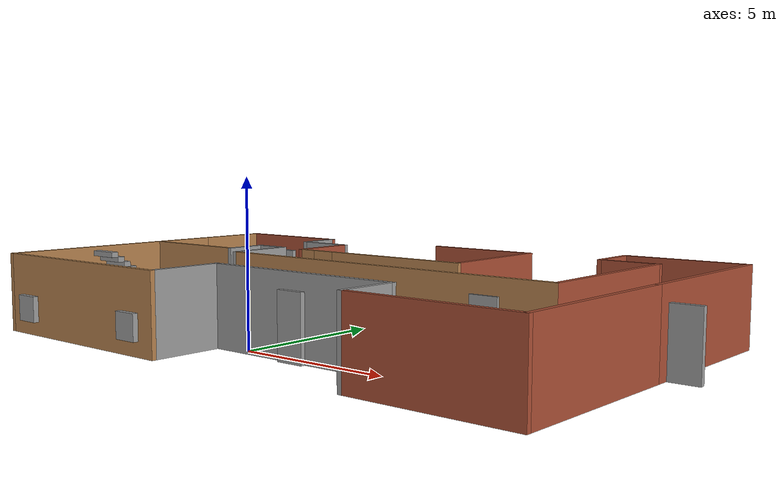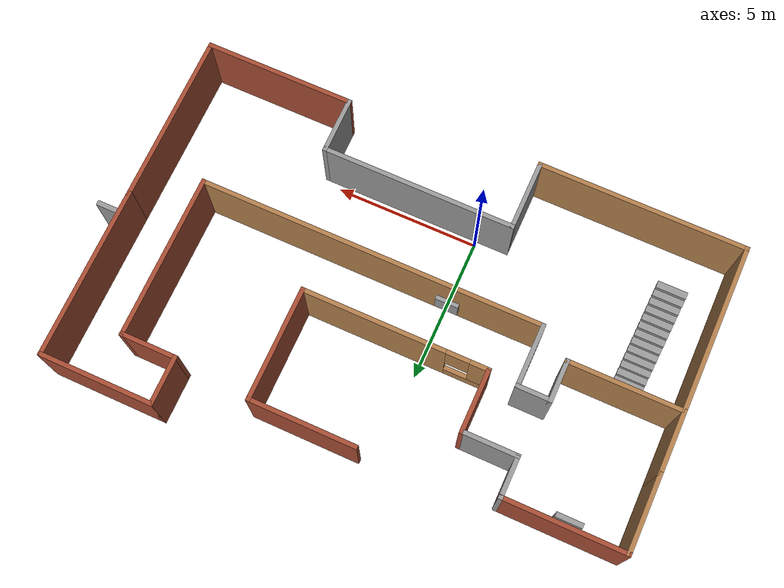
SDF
<?xml version='1.0'?>
<sdf version='1.6'>
  <model name='Untitled'>
    <pose frame=''>1.23619 3.51457 0 0 -0 0</pose>
    <link name='Door_0'>
      <collision name='Door_0_Collision'>
        <geometry>
          <box>
            <size>0.9 0.17 2</size>
          </box>
        </geometry>
        <pose frame=''>0 0 1 0 -0 0</pose>
      </collision>
      <visual name='Door_0_Visual'>
        <pose frame=''>0 0 1 0 -0 0</pose>
        <geometry>
          <box>
            <size>0.9 0.17 2</size>
          </box>
        </geometry>
        <material>
          <script>
            <uri>file://media/materials/scripts/gazebo.material</uri>
            <name>Gazebo/Grey</name>
          </script>
        </material>
      </visual>
      <pose frame=''>-7.462 4.06 0 0 -0 0</pose>
    </link>
    <link name='Door_1'>
      <collision name='Door_1_Collision'>
        <geometry>
          <box>
            <size>0.9 0.17 2</size>
          </box>
        </geometry>
        <pose frame=''>0 0 1 0 -0 0</pose>
      </collision>
      <visual name='Door_1_Visual'>
        <pose frame=''>0 0 1 0 -0 0</pose>
        <geometry>
          <box>
            <size>0.9 0.17 2</size>
          </box>
        </geometry>
        <material>
          <script>
            <uri>file://media/materials/scripts/gazebo.material</uri>
            <name>Gazebo/Grey</name>
          </script>
        </material>
      </visual>
      <pose frame=''>0.883239 -3.89073 0 0 -0 0</pose>
    </link>
    <link name='Door_2'>
      <collision name='Door_2_Collision'>
        <geometry>
          <box>
            <size>0.9 0.17 2</size>
          </box>
        </geometry>
        <pose frame=''>0 0 1 0 -0 0</pose>
      </collision>
      <visual name='Door_2_Visual'>
        <pose frame=''>0 0 1 0 -0 0</pose>
        <geometry>
          <box>
            <size>0.9 0.17 2</size>
          </box>
        </geometry>
        <material>
          <script>
            <uri>file://media/materials/scripts/gazebo.material</uri>
            <name>Gazebo/Grey</name>
          </script>
        </material>
      </visual>
      <pose frame=''>9.92731 0.817506 0 0 -0 0</pose>
    </link>
    <link name='Door_3'>
      <collision name='Door_3_Collision'>
        <geometry>
          <box>
            <size>0.9 0.17 2</size>
          </box>
        </geometry>
        <pose frame=''>0 0 1 0 -0 0</pose>
      </collision>
      <visual name='Door_3_Visual'>
        <pose frame=''>0 0 1 0 -0 0</pose>
        <geometry>
          <box>
            <size>0.9 0.17 2</size>
          </box>
        </geometry>
        <material>
          <script>
            <uri>file://media/materials/scripts/gazebo.material</uri>
            <name>Gazebo/Grey</name>
          </script>
        </material>
      </visual>
      <pose frame=''>5.29887 -1.17751 0 0 -0 0</pose>
    </link>
    <link name='Stairs_3'>
      <visual name='Stairs_3_Visual_0'>
        <pose frame=''>-7.69237 -0.558825 0.083333 0 -0 0</pose>
        <geometry>
          <box>
            <size>1 0.233333 0.166667</size>
          </box>
        </geometry>
        <material>
          <script>
            <uri>file://media/materials/scripts/gazebo.material</uri>
            <name>Gazebo/Grey</name>
          </script>
          <ambient>1 1 1 1</ambient>
        </material>
        <meta>
          <layer>0</layer>
        </meta>
      </visual>
      <collision name='Stairs_3_Collision_0'>
        <geometry>
          <box>
            <size>1 0.233333 0.166667</size>
          </box>
        </geometry>
        <pose frame=''>-7.69237 -0.558825 0.083333 0 -0 0</pose>
      </collision>
      <visual name='Stairs_3_Visual_1'>
        <pose frame=''>-7.69237 -0.792158 0.25 0 -0 0</pose>
        <geometry>
          <box>
            <size>1 0.233333 0.166667</size>
          </box>
        </geometry>
        <material>
          <script>
            <uri>file://media/materials/scripts/gazebo.material</uri>
            <name>Gazebo/Grey</name>
          </script>
          <ambient>1 1 1 1</ambient>
        </material>
        <meta>
          <layer>0</layer>
        </meta>
      </visual>
      <collision name='Stairs_3_Collision_1'>
        <geometry>
          <box>
            <size>1 0.233333 0.166667</size>
          </box>
        </geometry>
        <pose frame=''>-7.69237 -0.792158 0.25 0 -0 0</pose>
      </collision>
      <visual name='Stairs_3_Visual_2'>
        <pose frame=''>-7.69237 -1.02549 0.416667 0 -0 0</pose>
        <geometry>
          <box>
            <size>1 0.233333 0.166667</size>
          </box>
        </geometry>
        <material>
          <script>
            <uri>file://media/materials/scripts/gazebo.material</uri>
            <name>Gazebo/Grey</name>
          </script>
          <ambient>1 1 1 1</ambient>
        </material>
        <meta>
          <layer>0</layer>
        </meta>
      </visual>
      <collision name='Stairs_3_Collision_2'>
        <geometry>
          <box>
            <size>1 0.233333 0.166667</size>
          </box>
        </geometry>
        <pose frame=''>-7.69237 -1.02549 0.416667 0 -0 0</pose>
      </collision>
      <visual name='Stairs_3_Visual_3'>
        <pose frame=''>-7.69237 -1.25883 0.583333 0 -0 0</pose>
        <geometry>
          <box>
            <size>1 0.233333 0.166667</size>
          </box>
        </geometry>
        <material>
          <script>
            <uri>file://media/materials/scripts/gazebo.material</uri>
            <name>Gazebo/Grey</name>
          </script>
          <ambient>1 1 1 1</ambient>
        </material>
        <meta>
          <layer>0</layer>
        </meta>
      </visual>
      <collision name='Stairs_3_Collision_3'>
        <geometry>
          <box>
            <size>1 0.233333 0.166667</size>
          </box>
        </geometry>
        <pose frame=''>-7.69237 -1.25883 0.583333 0 -0 0</pose>
      </collision>
      <visual name='Stairs_3_Visual_4'>
        <pose frame=''>-7.69237 -1.49216 0.75 0 -0 0</pose>
        <geometry>
          <box>
            <size>1 0.233333 0.166667</size>
          </box>
        </geometry>
        <material>
          <script>
            <uri>file://media/materials/scripts/gazebo.material</uri>
            <name>Gazebo/Grey</name>
          </script>
          <ambient>1 1 1 1</ambient>
        </material>
        <meta>
          <layer>0</layer>
        </meta>
      </visual>
      <collision name='Stairs_3_Collision_4'>
        <geometry>
          <box>
            <size>1 0.233333 0.166667</size>
          </box>
        </geometry>
        <pose frame=''>-7.69237 -1.49216 0.75 0 -0 0</pose>
      </collision>
      <visual name='Stairs_3_Visual_5'>
        <pose frame=''>-7.69237 -1.72549 0.916667 0 -0 0</pose>
        <geometry>
          <box>
            <size>1 0.233333 0.166667</size>
          </box>
        </geometry>
        <material>
          <script>
            <uri>file://media/materials/scripts/gazebo.material</uri>
            <name>Gazebo/Grey</name>
          </script>
          <ambient>1 1 1 1</ambient>
        </material>
        <meta>
          <layer>0</layer>
        </meta>
      </visual>
      <collision name='Stairs_3_Collision_5'>
        <geometry>
          <box>
            <size>1 0.233333 0.166667</size>
          </box>
        </geometry>
        <pose frame=''>-7.69237 -1.72549 0.916667 0 -0 0</pose>
      </collision>
      <visual name='Stairs_3_Visual_6'>
        <pose frame=''>-7.69237 -1.95883 1.08333 0 -0 0</pose>
        <geometry>
          <box>
            <size>1 0.233333 0.166667</size>
          </box>
        </geometry>
        <material>
          <script>
            <uri>file://media/materials/scripts/gazebo.material</uri>
            <name>Gazebo/Grey</name>
          </script>
          <ambient>1 1 1 1</ambient>
        </material>
        <meta>
          <layer>0</layer>
        </meta>
      </visual>
      <collision name='Stairs_3_Collision_6'>
        <geometry>
          <box>
            <size>1 0.233333 0.166667</size>
          </box>
        </geometry>
        <pose frame=''>-7.69237 -1.95883 1.08333 0 -0 0</pose>
      </collision>
      <visual name='Stairs_3_Visual_7'>
        <pose frame=''>-7.69237 -2.19216 1.25 0 -0 0</pose>
        <geometry>
          <box>
            <size>1 0.233333 0.166667</size>
          </box>
        </geometry>
        <material>
          <script>
            <uri>file://media/materials/scripts/gazebo.material</uri>
            <name>Gazebo/Grey</name>
          </script>
          <ambient>1 1 1 1</ambient>
        </material>
        <meta>
          <layer>0</layer>
        </meta>
      </visual>
      <collision name='Stairs_3_Collision_7'>
        <geometry>
          <box>
            <size>1 0.233333 0.166667</size>
          </box>
        </geometry>
        <pose frame=''>-7.69237 -2.19216 1.25 0 -0 0</pose>
      </collision>
      <visual name='Stairs_3_Visual_8'>
        <pose frame=''>-7.69237 -2.42549 1.41667 0 -0 0</pose>
        <geometry>
          <box>
            <size>1 0.233333 0.166667</size>
          </box>
        </geometry>
        <material>
          <script>
            <uri>file://media/materials/scripts/gazebo.material</uri>
            <name>Gazebo/Grey</name>
          </script>
          <ambient>1 1 1 1</ambient>
        </material>
        <meta>
          <layer>0</layer>
        </meta>
      </visual>
      <collision name='Stairs_3_Collision_8'>
        <geometry>
          <box>
            <size>1 0.233333 0.166667</size>
          </box>
        </geometry>
        <pose frame=''>-7.69237 -2.42549 1.41667 0 -0 0</pose>
      </collision>
      <visual name='Stairs_3_Visual_9'>
        <pose frame=''>-7.69237 -2.65883 1.58333 0 -0 0</pose>
        <geometry>
          <box>
            <size>1 0.233333 0.166667</size>
          </box>
        </geometry>
        <material>
          <script>
            <uri>file://media/materials/scripts/gazebo.material</uri>
            <name>Gazebo/Grey</name>
          </script>
          <ambient>1 1 1 1</ambient>
        </material>
        <meta>
          <layer>0</layer>
        </meta>
      </visual>
      <collision name='Stairs_3_Collision_9'>
        <geometry>
          <box>
            <size>1 0.233333 0.166667</size>
          </box>
        </geometry>
        <pose frame=''>-7.69237 -2.65883 1.58333 0 -0 0</pose>
      </collision>
      <visual name='Stairs_3_Visual_10'>
        <pose frame=''>-7.69237 -2.89216 1.75 0 -0 0</pose>
        <geometry>
          <box>
            <size>1 0.233333 0.166667</size>
          </box>
        </geometry>
        <material>
          <script>
            <uri>file://media/materials/scripts/gazebo.material</uri>
            <name>Gazebo/Grey</name>
          </script>
          <ambient>1 1 1 1</ambient>
        </material>
        <meta>
          <layer>0</layer>
        </meta>
      </visual>
      <collision name='Stairs_3_Collision_10'>
        <geometry>
          <box>
            <size>1 0.233333 0.166667</size>
          </box>
        </geometry>
        <pose frame=''>-7.69237 -2.89216 1.75 0 -0 0</pose>
      </collision>
      <visual name='Stairs_3_Visual_11'>
        <pose frame=''>-7.69237 -3.12549 1.91667 0 -0 0</pose>
        <geometry>
          <box>
            <size>1 0.233333 0.166667</size>
          </box>
        </geometry>
        <material>
          <script>
            <uri>file://media/materials/scripts/gazebo.material</uri>
            <name>Gazebo/Grey</name>
          </script>
          <ambient>1 1 1 1</ambient>
        </material>
        <meta>
          <layer>0</layer>
        </meta>
      </visual>
      <collision name='Stairs_3_Collision_11'>
        <geometry>
          <box>
            <size>1 0.233333 0.166667</size>
          </box>
        </geometry>
        <pose frame=''>-7.69237 -3.12549 1.91667 0 -0 0</pose>
      </collision>
      <visual name='Stairs_3_Visual_12'>
        <pose frame=''>-7.69237 -3.35882 2.08333 0 -0 0</pose>
        <geometry>
          <box>
            <size>1 0.233333 0.166667</size>
          </box>
        </geometry>
        <material>
          <script>
            <uri>file://media/materials/scripts/gazebo.material</uri>
            <name>Gazebo/Grey</name>
          </script>
          <ambient>1 1 1 1</ambient>
        </material>
        <meta>
          <layer>0</layer>
        </meta>
      </visual>
      <collision name='Stairs_3_Collision_12'>
        <geometry>
          <box>
            <size>1 0.233333 0.166667</size>
          </box>
        </geometry>
        <pose frame=''>-7.69237 -3.35882 2.08333 0 -0 0</pose>
      </collision>
      <visual name='Stairs_3_Visual_13'>
        <pose frame=''>-7.69237 -3.59216 2.25 0 -0 0</pose>
        <geometry>
          <box>
            <size>1 0.233333 0.166667</size>
          </box>
        </geometry>
        <material>
          <script>
            <uri>file://media/materials/scripts/gazebo.material</uri>
            <name>Gazebo/Grey</name>
          </script>
          <ambient>1 1 1 1</ambient>
        </material>
        <meta>
          <layer>0</layer>
        </meta>
      </visual>
      <collision name='Stairs_3_Collision_13'>
        <geometry>
          <box>
            <size>1 0.233333 0.166667</size>
          </box>
        </geometry>
        <pose frame=''>-7.69237 -3.59216 2.25 0 -0 0</pose>
      </collision>
      <visual name='Stairs_3_Visual_14'>
        <pose frame=''>-7.69237 -3.82549 2.41667 0 -0 0</pose>
        <geometry>
          <box>
            <size>1 0.233333 0.166667</size>
          </box>
        </geometry>
        <material>
          <script>
            <uri>file://media/materials/scripts/gazebo.material</uri>
            <name>Gazebo/Grey</name>
          </script>
          <ambient>1 1 1 1</ambient>
        </material>
        <meta>
          <layer>0</layer>
        </meta>
      </visual>
      <collision name='Stairs_3_Collision_14'>
        <geometry>
          <box>
            <size>1 0.233333 0.166667</size>
          </box>
        </geometry>
        <pose frame=''>-7.69237 -3.82549 2.41667 0 -0 0</pose>
      </collision>
    </link>
    <link name='Wall_0'>
      <collision name='Wall_0_Collision'>
        <geometry>
          <box>
            <size>3.75 0.15 2.5</size>
          </box>
        </geometry>
        <pose frame=''>0 0 1.25 0 -0 0</pose>
      </collision>
      <visual name='Wall_0_Visual'>
        <pose frame=''>0 0 1.25 0 -0 0</pose>
        <geometry>
          <box>
            <size>3.75 0.15 2.5</size>
          </box>
        </geometry>
        <material>
          <script>
            <uri>file://media/materials/scripts/gazebo.material</uri>
            <name>Gazebo/Bricks</name>
          </script>
          <ambient>1 1 1 1</ambient>
        </material>
        <meta>
          <layer>0</layer>
        </meta>
      </visual>
      <pose frame=''>1.1 4.75 0 0 -0 0</pose>
    </link>
    <link name='Wall_1'>
      <collision name='Wall_1_Collision'>
        <geometry>
          <box>
            <size>4 0.15 2.5</size>
          </box>
        </geometry>
        <pose frame=''>0 0 1.25 0 -0 0</pose>
      </collision>
      <visual name='Wall_1_Visual'>
        <pose frame=''>0 0 1.25 0 -0 0</pose>
        <geometry>
          <box>
            <size>4 0.15 2.5</size>
          </box>
        </geometry>
        <material>
          <script>
            <uri>file://media/materials/scripts/gazebo.material</uri>
            <name>Gazebo/Bricks</name>
          </script>
          <ambient>1 1 1 1</ambient>
        </material>
        <meta>
          <layer>0</layer>
        </meta>
      </visual>
      <pose frame=''>2.9 2.825 0 0 -0 -1.5708</pose>
    </link>
    <link name='Wall_10'>
      <collision name='Wall_10_Collision'>
        <geometry>
          <box>
            <size>2.25 0.15 2.5</size>
          </box>
        </geometry>
        <pose frame=''>0 0 1.25 0 -0 0</pose>
      </collision>
      <visual name='Wall_10_Visual'>
        <pose frame=''>0 0 1.25 0 -0 0</pose>
        <geometry>
          <box>
            <size>2.25 0.15 2.5</size>
          </box>
        </geometry>
        <material>
          <script>
            <uri>file://media/materials/scripts/gazebo.material</uri>
            <name>Gazebo/Wood</name>
          </script>
          <ambient>1 1 1 1</ambient>
        </material>
        <meta>
          <layer>0</layer>
        </meta>
      </visual>
      <pose frame=''>-9.4 0.7 0 0 -0 -1.5708</pose>
    </link>
    <link name='Wall_11'>
      <collision name='Wall_11_Collision'>
        <geometry>
          <box>
            <size>4 0.15 2.5</size>
          </box>
        </geometry>
        <pose frame=''>0 0 1.25 0 -0 0</pose>
      </collision>
      <visual name='Wall_11_Visual'>
        <pose frame=''>0 0 1.25 0 -0 0</pose>
        <geometry>
          <box>
            <size>4 0.15 2.5</size>
          </box>
        </geometry>
        <material>
          <script>
            <uri>file://media/materials/scripts/gazebo.material</uri>
            <name>Gazebo/Wood</name>
          </script>
          <ambient>1 1 1 1</ambient>
        </material>
        <meta>
          <layer>0</layer>
        </meta>
      </visual>
      <pose frame=''>-7.475 -0.35 0 0 -0 0</pose>
    </link>
    <link name='Wall_12'>
      <collision name='Wall_12_Collision'>
        <geometry>
          <box>
            <size>1.5 0.15 2.5</size>
          </box>
        </geometry>
        <pose frame=''>0 0 1.25 0 -0 0</pose>
      </collision>
      <visual name='Wall_12_Visual'>
        <pose frame=''>0 0 1.25 0 -0 0</pose>
        <geometry>
          <box>
            <size>1.5 0.15 2.5</size>
          </box>
        </geometry>
        <material>
          <script>
            <uri>file://media/materials/scripts/gazebo.material</uri>
            <name>Gazebo/Grey</name>
          </script>
          <ambient>1 1 1 1</ambient>
        </material>
        <meta>
          <layer>0</layer>
        </meta>
      </visual>
      <pose frame=''>-5.55 0.325 0 0 -0 1.5708</pose>
    </link>
    <link name='Wall_13'>
      <collision name='Wall_13_Collision'>
        <geometry>
          <box>
            <size>1.25 0.15 2.5</size>
          </box>
        </geometry>
        <pose frame=''>0 0 1.25 0 -0 0</pose>
      </collision>
      <visual name='Wall_13_Visual'>
        <pose frame=''>0 0 1.25 0 -0 0</pose>
        <geometry>
          <box>
            <size>1.25 0.15 2.5</size>
          </box>
        </geometry>
        <material>
          <script>
            <uri>file://media/materials/scripts/gazebo.material</uri>
            <name>Gazebo/Grey</name>
          </script>
          <ambient>1 1 1 1</ambient>
        </material>
        <meta>
          <layer>0</layer>
        </meta>
      </visual>
      <pose frame=''>-5 1 0 0 -0 0</pose>
    </link>
    <link name='Wall_14'>
      <collision name='Wall_14_Collision'>
        <geometry>
          <box>
            <size>2.25 0.15 2.5</size>
          </box>
        </geometry>
        <pose frame=''>0 0 1.25 0 -0 0</pose>
      </collision>
      <visual name='Wall_14_Visual'>
        <pose frame=''>0 0 1.25 0 -0 0</pose>
        <geometry>
          <box>
            <size>2.25 0.15 2.5</size>
          </box>
        </geometry>
        <material>
          <script>
            <uri>file://media/materials/scripts/gazebo.material</uri>
            <name>Gazebo/Grey</name>
          </script>
          <ambient>1 1 1 1</ambient>
        </material>
        <meta>
          <layer>0</layer>
        </meta>
      </visual>
      <pose frame=''>-4.45 -0.05 0 0 -0 -1.5708</pose>
    </link>
    <link name='Wall_15'>
      <collision name='Wall_15_Collision'>
        <geometry>
          <box>
            <size>12 0.15 2.5</size>
          </box>
        </geometry>
        <pose frame=''>0 0 1.25 0 -0 0</pose>
      </collision>
      <visual name='Wall_15_Visual'>
        <pose frame=''>0 0 1.25 0 -0 0</pose>
        <geometry>
          <box>
            <size>12 0.15 2.5</size>
          </box>
        </geometry>
        <material>
          <script>
            <uri>file://media/materials/scripts/gazebo.material</uri>
            <name>Gazebo/Wood</name>
          </script>
          <ambient>1 1 1 1</ambient>
        </material>
        <meta>
          <layer>0</layer>
        </meta>
      </visual>
      <pose frame=''>1.475 -1.1 0 0 -0 0</pose>
    </link>
    <link name='Wall_16'>
      <collision name='Wall_16_Collision'>
        <geometry>
          <box>
            <size>5.75 0.15 2.5</size>
          </box>
        </geometry>
        <pose frame=''>0 0 1.25 0 -0 0</pose>
      </collision>
      <visual name='Wall_16_Visual'>
        <pose frame=''>0 0 1.25 0 -0 0</pose>
        <geometry>
          <box>
            <size>5.75 0.15 2.5</size>
          </box>
        </geometry>
        <material>
          <script>
            <uri>file://media/materials/scripts/gazebo.material</uri>
            <name>Gazebo/Bricks</name>
          </script>
          <ambient>1 1 1 1</ambient>
        </material>
        <meta>
          <layer>0</layer>
        </meta>
      </visual>
      <pose frame=''>7.4 1.7 0 0 -0 1.5708</pose>
    </link>
    <link name='Wall_17'>
      <collision name='Wall_17_Collision'>
        <geometry>
          <box>
            <size>2 0.15 2.5</size>
          </box>
        </geometry>
        <pose frame=''>0 0 1.25 0 -0 0</pose>
      </collision>
      <visual name='Wall_17_Visual'>
        <pose frame=''>0 0 1.25 0 -0 0</pose>
        <geometry>
          <box>
            <size>2 0.15 2.5</size>
          </box>
        </geometry>
        <material>
          <script>
            <uri>file://media/materials/scripts/gazebo.material</uri>
            <name>Gazebo/Bricks</name>
          </script>
          <ambient>1 1 1 1</ambient>
        </material>
        <meta>
          <layer>0</layer>
        </meta>
      </visual>
      <pose frame=''>6.475 4.5 0 0 -0 3.14159</pose>
    </link>
    <link name='Wall_19'>
      <collision name='Wall_19_Collision'>
        <geometry>
          <box>
            <size>1.75 0.15 2.5</size>
          </box>
        </geometry>
        <pose frame=''>0 0 1.25 0 -0 0</pose>
      </collision>
      <visual name='Wall_19_Visual'>
        <pose frame=''>0 0 1.25 0 -0 0</pose>
        <geometry>
          <box>
            <size>1.75 0.15 2.5</size>
          </box>
        </geometry>
        <material>
          <script>
            <uri>file://media/materials/scripts/gazebo.material</uri>
            <name>Gazebo/Bricks</name>
          </script>
          <ambient>1 1 1 1</ambient>
        </material>
        <meta>
          <layer>0</layer>
        </meta>
      </visual>
      <pose frame=''>5.55 5.3 0 0 -0 1.5708</pose>
    </link>
    <link name='Wall_2'>
      <pose frame=''>-0.275 0.9 0 0 -0 3.14159</pose>
      <visual name='Wall_2_Visual_0'>
        <pose frame=''>-0.75 0 1.25 0 -0 0</pose>
        <geometry>
          <box>
            <size>5 0.15 2.5</size>
          </box>
        </geometry>
        <material>
          <script>
            <uri>file://media/materials/scripts/gazebo.material</uri>
            <name>Gazebo/Wood</name>
          </script>
          <ambient>1 1 1 1</ambient>
        </material>
        <meta>
          <layer>0</layer>
        </meta>
      </visual>
      <collision name='Wall_2_Collision_0'>
        <geometry>
          <box>
            <size>5 0.15 2.5</size>
          </box>
        </geometry>
        <pose frame=''>-0.75 0 1.25 0 -0 0</pose>
      </collision>
      <visual name='Wall_2_Visual_1'>
        <pose frame=''>2.5 0 0.25 0 -0 0</pose>
        <geometry>
          <box>
            <size>1.5 0.15 0.5</size>
          </box>
        </geometry>
        <material>
          <script>
            <uri>file://media/materials/scripts/gazebo.material</uri>
            <name>Gazebo/Wood</name>
          </script>
          <ambient>1 1 1 1</ambient>
        </material>
        <meta>
          <layer>0</layer>
        </meta>
      </visual>
      <collision name='Wall_2_Collision_1'>
        <geometry>
          <box>
            <size>1.5 0.15 0.5</size>
          </box>
        </geometry>
        <pose frame=''>2.5 0 0.25 0 -0 0</pose>
      </collision>
      <visual name='Wall_2_Visual_2'>
        <pose frame=''>2.9 0 1.5 0 -0 0</pose>
        <geometry>
          <box>
            <size>0.7 0.15 2</size>
          </box>
        </geometry>
        <material>
          <script>
            <uri>file://media/materials/scripts/gazebo.material</uri>
            <name>Gazebo/Wood</name>
          </script>
          <ambient>1 1 1 1</ambient>
        </material>
        <meta>
          <layer>0</layer>
        </meta>
      </visual>
      <collision name='Wall_2_Collision_2'>
        <geometry>
          <box>
            <size>0.7 0.15 2</size>
          </box>
        </geometry>
        <pose frame=''>2.9 0 1.5 0 -0 0</pose>
      </collision>
      <visual name='Wall_2_Visual_3'>
        <pose frame=''>2.15 0 1.9 0 -0 0</pose>
        <geometry>
          <box>
            <size>0.8 0.15 1.2</size>
          </box>
        </geometry>
        <material>
          <script>
            <uri>file://media/materials/scripts/gazebo.material</uri>
            <name>Gazebo/Wood</name>
          </script>
          <ambient>1 1 1 1</ambient>
        </material>
        <meta>
          <layer>0</layer>
        </meta>
      </visual>
      <collision name='Wall_2_Collision_3'>
        <geometry>
          <box>
            <size>0.8 0.15 1.2</size>
          </box>
        </geometry>
        <pose frame=''>2.15 0 1.9 0 -0 0</pose>
      </collision>
    </link>
    <link name='Wall_20'>
      <collision name='Wall_20_Collision'>
        <geometry>
          <box>
            <size>4 0.15 2.5</size>
          </box>
        </geometry>
        <pose frame=''>0 0 1.25 0 -0 0</pose>
      </collision>
      <visual name='Wall_20_Visual'>
        <pose frame=''>0 0 1.25 0 -0 0</pose>
        <geometry>
          <box>
            <size>4 0.15 2.5</size>
          </box>
        </geometry>
        <material>
          <script>
            <uri>file://media/materials/scripts/gazebo.material</uri>
            <name>Gazebo/Bricks</name>
          </script>
          <ambient>1 1 1 1</ambient>
        </material>
        <meta>
          <layer>0</layer>
        </meta>
      </visual>
      <pose frame=''>7.475 6.1 0 0 -0 0</pose>
    </link>
    <link name='Wall_21'>
      <collision name='Wall_21_Collision'>
        <geometry>
          <box>
            <size>6 0.15 2.5</size>
          </box>
        </geometry>
        <pose frame=''>0 0 1.25 0 -0 0</pose>
      </collision>
      <visual name='Wall_21_Visual'>
        <pose frame=''>0 0 1.25 0 -0 0</pose>
        <geometry>
          <box>
            <size>6 0.15 2.5</size>
          </box>
        </geometry>
        <material>
          <script>
            <uri>file://media/materials/scripts/gazebo.material</uri>
            <name>Gazebo/Bricks</name>
          </script>
          <ambient>1 1 1 1</ambient>
        </material>
        <meta>
          <layer>0</layer>
        </meta>
      </visual>
      <pose frame=''>9.4 3.175 0 0 -0 -1.5708</pose>
    </link>
    <link name='Wall_23'>
      <collision name='Wall_23_Collision'>
        <geometry>
          <box>
            <size>6 0.15 2.5</size>
          </box>
        </geometry>
        <pose frame=''>0 0 1.25 0 -0 0</pose>
      </collision>
      <visual name='Wall_23_Visual'>
        <pose frame=''>0 0 1.25 0 -0 0</pose>
        <geometry>
          <box>
            <size>6 0.15 2.5</size>
          </box>
        </geometry>
        <material>
          <script>
            <uri>file://media/materials/scripts/gazebo.material</uri>
            <name>Gazebo/Bricks</name>
          </script>
          <ambient>1 1 1 1</ambient>
        </material>
        <meta>
          <layer>0</layer>
        </meta>
      </visual>
      <pose frame=''>9.4 -2.675 0 0 -0 -1.5708</pose>
    </link>
    <link name='Wall_24'>
      <collision name='Wall_24_Collision'>
        <geometry>
          <box>
            <size>5.25 0.15 2.5</size>
          </box>
        </geometry>
        <pose frame=''>0 0 1.25 0 -0 0</pose>
      </collision>
      <visual name='Wall_24_Visual'>
        <pose frame=''>0 0 1.25 0 -0 0</pose>
        <geometry>
          <box>
            <size>5.25 0.15 2.5</size>
          </box>
        </geometry>
        <material>
          <script>
            <uri>file://media/materials/scripts/gazebo.material</uri>
            <name>Gazebo/Bricks</name>
          </script>
          <ambient>1 1 1 1</ambient>
        </material>
        <meta>
          <layer>0</layer>
        </meta>
      </visual>
      <pose frame=''>6.85 -5.6 0 0 -0 3.14159</pose>
    </link>
    <link name='Wall_25'>
      <collision name='Wall_25_Collision'>
        <geometry>
          <box>
            <size>2 0.15 2.5</size>
          </box>
        </geometry>
        <pose frame=''>0 0 1.25 0 -0 0</pose>
      </collision>
      <visual name='Wall_25_Visual'>
        <pose frame=''>0 0 1.25 0 -0 0</pose>
        <geometry>
          <box>
            <size>2 0.15 2.5</size>
          </box>
        </geometry>
        <material>
          <script>
            <uri>file://media/materials/scripts/gazebo.material</uri>
            <name>Gazebo/Grey</name>
          </script>
          <ambient>1 1 1 1</ambient>
        </material>
        <meta>
          <layer>0</layer>
        </meta>
      </visual>
      <pose frame=''>4.3 -4.675 0 0 -0 1.5708</pose>
    </link>
    <link name='Wall_26'>
      <collision name='Wall_26_Collision'>
        <geometry>
          <box>
            <size>6.75 0.15 2.5</size>
          </box>
        </geometry>
        <pose frame=''>0 0 1.25 0 -0 0</pose>
      </collision>
      <visual name='Wall_26_Visual'>
        <pose frame=''>0 0 1.25 0 -0 0</pose>
        <geometry>
          <box>
            <size>6.75 0.15 2.5</size>
          </box>
        </geometry>
        <material>
          <script>
            <uri>file://media/materials/scripts/gazebo.material</uri>
            <name>Gazebo/Grey</name>
          </script>
          <ambient>1 1 1 1</ambient>
        </material>
        <meta>
          <layer>0</layer>
        </meta>
      </visual>
      <pose frame=''>1 -3.75 0 0 -0 3.14159</pose>
    </link>
    <link name='Wall_27'>
      <collision name='Wall_27_Collision'>
        <geometry>
          <box>
            <size>2.5 0.15 2.5</size>
          </box>
        </geometry>
        <pose frame=''>0 0 1.25 0 -0 0</pose>
      </collision>
      <visual name='Wall_27_Visual'>
        <pose frame=''>0 0 1.25 0 -0 0</pose>
        <geometry>
          <box>
            <size>2.5 0.15 2.5</size>
          </box>
        </geometry>
        <material>
          <script>
            <uri>file://media/materials/scripts/gazebo.material</uri>
            <name>Gazebo/Grey</name>
          </script>
          <ambient>1 1 1 1</ambient>
        </material>
        <meta>
          <layer>0</layer>
        </meta>
      </visual>
      <pose frame=''>-2.3 -4.925 0 0 -0 -1.5708</pose>
    </link>
    <link name='Wall_28'>
      <collision name='Wall_28_Collision'>
        <geometry>
          <box>
            <size>7.25 0.15 2.5</size>
          </box>
        </geometry>
        <pose frame=''>0 0 1.25 0 -0 0</pose>
      </collision>
      <visual name='Wall_28_Visual'>
        <pose frame=''>0 0 1.25 0 -0 0</pose>
        <geometry>
          <box>
            <size>7.25 0.15 2.5</size>
          </box>
        </geometry>
        <material>
          <script>
            <uri>file://media/materials/scripts/gazebo.material</uri>
            <name>Gazebo/Wood</name>
          </script>
          <ambient>1 1 1 1</ambient>
        </material>
        <meta>
          <layer>0</layer>
        </meta>
      </visual>
      <pose frame=''>-5.85 -6.1 0 0 -0 3.14159</pose>
    </link>
    <link name='Wall_29'>
      <collision name='Wall_29_Collision'>
        <geometry>
          <box>
            <size>5.9 0.15 2.5</size>
          </box>
        </geometry>
        <pose frame=''>0 0 1.25 0 -0 0</pose>
      </collision>
      <visual name='Wall_29_Visual'>
        <pose frame=''>0 0 1.25 0 -0 0</pose>
        <geometry>
          <box>
            <size>5.9 0.15 2.5</size>
          </box>
        </geometry>
        <material>
          <script>
            <uri>file://media/materials/scripts/gazebo.material</uri>
            <name>Gazebo/Wood</name>
          </script>
          <ambient>1 1 1 1</ambient>
        </material>
        <meta>
          <layer>0</layer>
        </meta>
      </visual>
      <pose frame=''>-9.4 -3.225 0 0 -0 1.5708</pose>
    </link>
    <link name='Wall_3'>
      <collision name='Wall_3_Collision'>
        <geometry>
          <box>
            <size>2.25 0.15 2.5</size>
          </box>
        </geometry>
        <pose frame=''>0 0 1.25 0 -0 0</pose>
      </collision>
      <visual name='Wall_3_Visual'>
        <pose frame=''>0 0 1.25 0 -0 0</pose>
        <geometry>
          <box>
            <size>2.25 0.15 2.5</size>
          </box>
        </geometry>
        <material>
          <script>
            <uri>file://media/materials/scripts/gazebo.material</uri>
            <name>Gazebo/Bricks</name>
          </script>
          <ambient>1 1 1 1</ambient>
        </material>
        <meta>
          <layer>0</layer>
        </meta>
      </visual>
      <pose frame=''>-3.45 1.95 0 0 -0 1.5708</pose>
    </link>
    <link name='Wall_4'>
      <collision name='Wall_4_Collision'>
        <geometry>
          <box>
            <size>2 0.15 2.5</size>
          </box>
        </geometry>
        <pose frame=''>0 0 1.25 0 -0 0</pose>
      </collision>
      <visual name='Wall_4_Visual'>
        <pose frame=''>0 0 1.25 0 -0 0</pose>
        <geometry>
          <box>
            <size>2 0.15 2.5</size>
          </box>
        </geometry>
        <material>
          <script>
            <uri>file://media/materials/scripts/gazebo.material</uri>
            <name>Gazebo/Grey</name>
          </script>
          <ambient>1 1 1 1</ambient>
        </material>
        <meta>
          <layer>0</layer>
        </meta>
      </visual>
      <pose frame=''>-4.375 3 0 0 -0 3.14159</pose>
    </link>
    <link name='Wall_5'>
      <collision name='Wall_5_Collision'>
        <geometry>
          <box>
            <size>1.5 0.15 2.5</size>
          </box>
        </geometry>
        <pose frame=''>0 0 1.25 0 -0 0</pose>
      </collision>
      <visual name='Wall_5_Visual'>
        <pose frame=''>0 0 1.25 0 -0 0</pose>
        <geometry>
          <box>
            <size>1.5 0.15 2.5</size>
          </box>
        </geometry>
        <material>
          <script>
            <uri>file://media/materials/scripts/gazebo.material</uri>
            <name>Gazebo/Grey</name>
          </script>
          <ambient>1 1 1 1</ambient>
        </material>
        <meta>
          <layer>0</layer>
        </meta>
      </visual>
      <pose frame=''>-5.3 3.675 0 0 -0 1.5708</pose>
    </link>
    <link name='Wall_6'>
      <collision name='Wall_6_Collision'>
        <geometry>
          <box>
            <size>4.25 0.15 2.5</size>
          </box>
        </geometry>
        <pose frame=''>0 0 1.25 0 -0 0</pose>
      </collision>
      <visual name='Wall_6_Visual'>
        <pose frame=''>0 0 1.25 0 -0 0</pose>
        <geometry>
          <box>
            <size>4.25 0.15 2.5</size>
          </box>
        </geometry>
        <material>
          <script>
            <uri>file://media/materials/scripts/gazebo.material</uri>
            <name>Gazebo/Bricks</name>
          </script>
          <ambient>1 1 1 1</ambient>
        </material>
        <meta>
          <layer>0</layer>
        </meta>
      </visual>
      <pose frame=''>-7.35 4.35 0 0 -0 3.14159</pose>
    </link>
    <link name='Wall_7'>
      <collision name='Wall_7_Collision'>
        <geometry>
          <box>
            <size>2.75 0.15 2.5</size>
          </box>
        </geometry>
        <pose frame=''>0 0 1.25 0 -0 0</pose>
      </collision>
      <visual name='Wall_7_Visual'>
        <pose frame=''>0 0 1.25 0 -0 0</pose>
        <geometry>
          <box>
            <size>2.75 0.15 2.5</size>
          </box>
        </geometry>
        <material>
          <script>
            <uri>file://media/materials/scripts/gazebo.material</uri>
            <name>Gazebo/Wood</name>
          </script>
          <ambient>1 1 1 1</ambient>
        </material>
        <meta>
          <layer>0</layer>
        </meta>
      </visual>
      <pose frame=''>-9.4 3.05 0 0 -0 -1.5708</pose>
    </link>
    <link name='Window_2'>
      <collision name='Window_2_Collision'>
        <geometry>
          <box>
            <size>0.8 0.17 0.8</size>
          </box>
        </geometry>
        <pose frame=''>0 0 0.4 0 -0 0</pose>
      </collision>
      <visual name='Window_2_Visual'>
        <pose frame=''>0 0 0.4 0 -0 0</pose>
        <geometry>
          <box>
            <size>0.8 0.17 0.8</size>
          </box>
        </geometry>
        <material>
          <script>
            <uri>file://media/materials/scripts/gazebo.material</uri>
            <name>Gazebo/Grey</name>
          </script>
        </material>
      </visual>
      <pose frame=''>-8.02783 -6.44435 0.5 0 -0 0</pose>
    </link>
    <link name='Window_3'>
      <collision name='Window_3_Collision'>
        <geometry>
          <box>
            <size>0.8 0.17 0.8</size>
          </box>
        </geometry>
        <pose frame=''>0 0 0.4 0 -0 0</pose>
      </collision>
      <visual name='Window_3_Visual'>
        <pose frame=''>0 0 0.4 0 -0 0</pose>
        <geometry>
          <box>
            <size>0.8 0.17 0.8</size>
          </box>
        </geometry>
        <material>
          <script>
            <uri>file://media/materials/scripts/gazebo.material</uri>
            <name>Gazebo/Grey</name>
          </script>
        </material>
      </visual>
      <pose frame=''>-3.05359 -6.39115 0.5 0 -0 0</pose>
    </link>
    <link name='Window_4'>
      <collision name='Window_4_Collision'>
        <geometry>
          <box>
            <size>0.8 0.17 0.8</size>
          </box>
        </geometry>
        <pose frame=''>0 0 0.4 0 -0 0</pose>
      </collision>
      <visual name='Window_4_Visual'>
        <pose frame=''>0 0 0.4 0 -0 0</pose>
        <geometry>
          <box>
            <size>0.8 0.17 0.8</size>
          </box>
        </geometry>
        <material>
          <script>
            <uri>file://media/materials/scripts/gazebo.material</uri>
            <name>Gazebo/Grey</name>
          </script>
        </material>
      </visual>
      <pose frame=''>-1.29798 -0.964707 0.5 0 -0 0</pose>
    </link>
    <static>1</static>
  </model>
</sdf>
